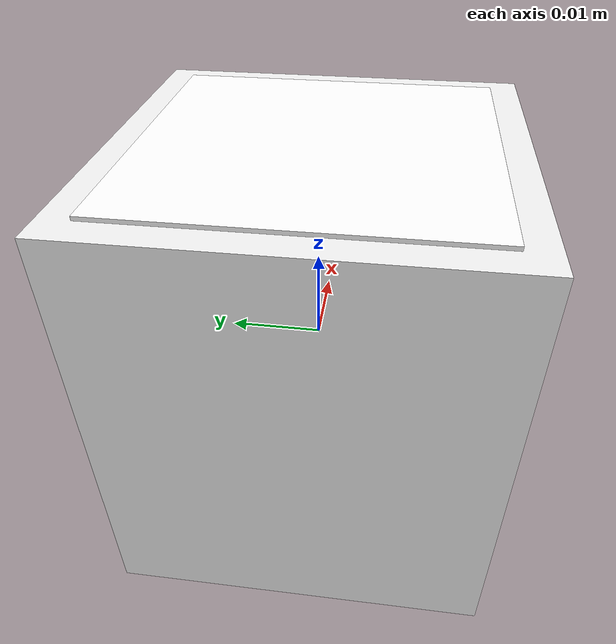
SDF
<?xml version="1.0"?>
<sdf version="1.10">
  <model name="aruco_box_1">
    <static>false</static>
    <link name="box_link">
      <inertial>
        <mass>0.05</mass>
        <inertia>
          <ixx>0.000017</ixx><iyy>0.000017</iyy><izz>0.000017</izz>
          <ixy>0</ixy><ixz>0</ixz><iyz>0</iyz>
        </inertia>
      </inertial>
      <collision name="box_collision">
        <geometry><box><size>0.028 0.028 0.040</size></box></geometry>
        <surface><friction><ode><mu>2.0</mu><mu2>2.0</mu2></ode></friction></surface>
      </collision>
      <visual name="box_visual">
        <geometry><box><size>0.040 0.040 0.045</size></box></geometry>
        <material><ambient>0.95 0.95 0.95 1</ambient><diffuse>0.95 0.95 0.95 1</diffuse></material>
      </visual>
      <visual name="marker_visual">
        <pose>0 0 0.0227 0 0 0</pose>
        <geometry><box><size>0.034 0.034 0.0004</size></box></geometry>
        <material>
          <ambient>1 1 1 1</ambient><diffuse>1 1 1 1</diffuse>
          <pbr><metal><albedo_map>materials/textures/aruco_1.png</albedo_map><roughness>1</roughness><metalness>0</metalness></metal></pbr>
        </material>
      </visual>
    </link>
  </model>
</sdf>
